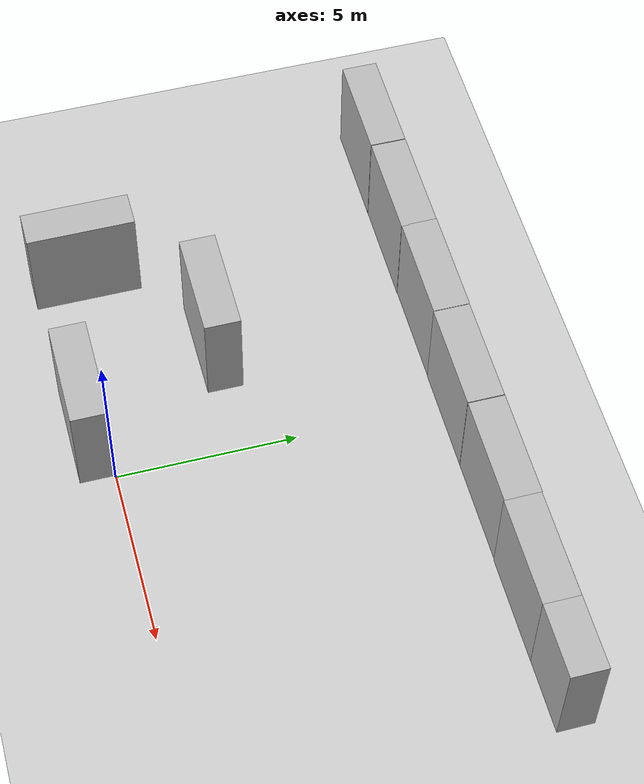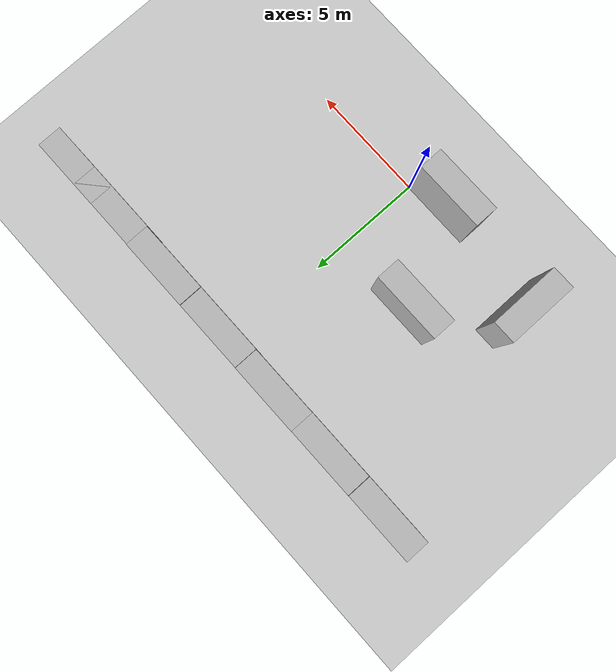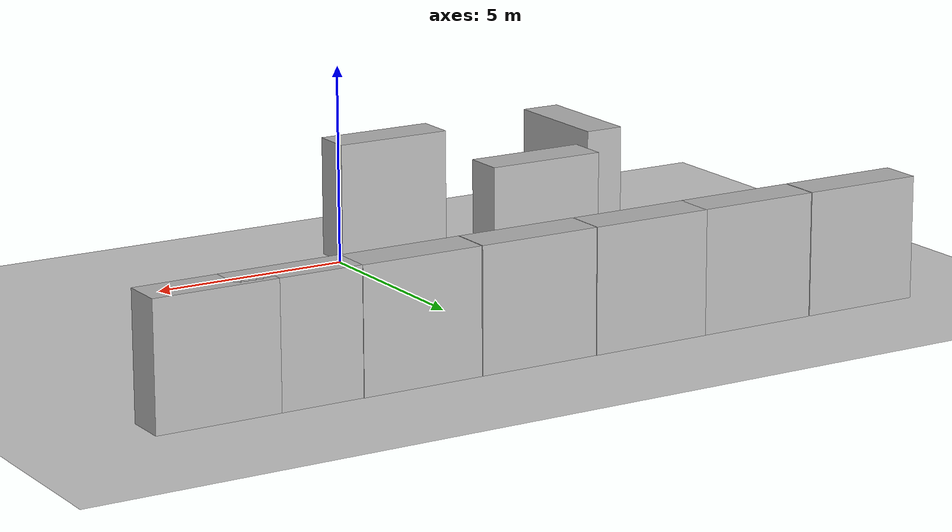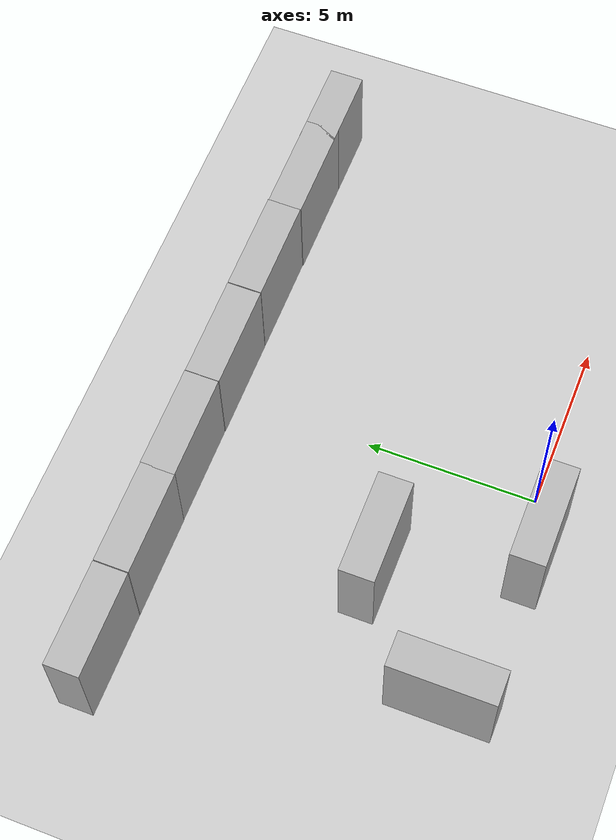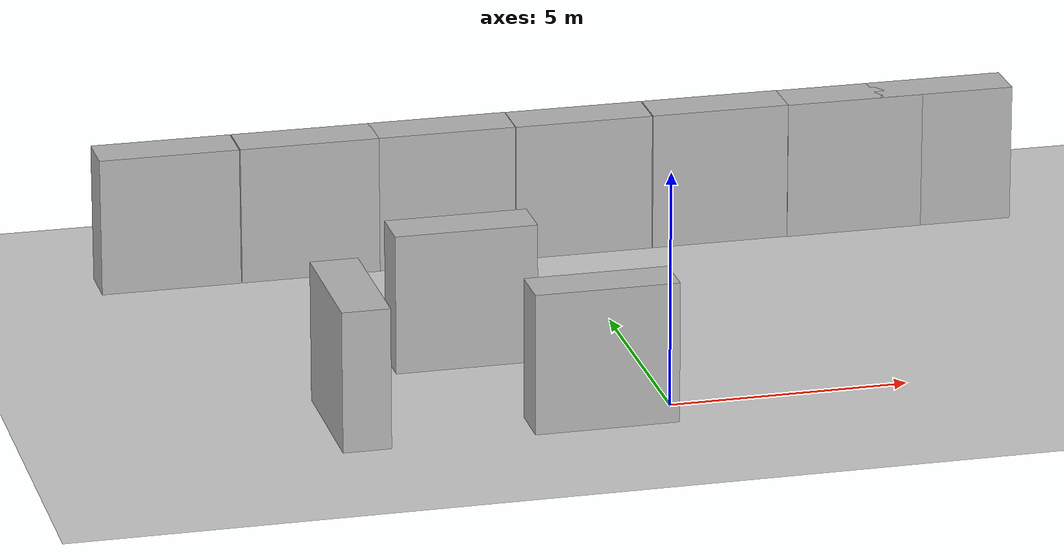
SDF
<sdf version="1.7">
 <world name="default">
  <light name="sun" type="directional">
   <pose>0 0 10 0 -0 0</pose>
   <diffuse>0.8 0.8 0.8 1</diffuse>
   <specular>0.2 0.2 0.2 1</specular>
   <attenuation>
    <range>1000</range>
    <constant>0.9</constant>
    <linear>0.01</linear>
    <quadratic>0.001</quadratic>
   </attenuation>
   <direction>-0.5 0.1 -0.9</direction>
   <spot><inner_angle>0</inner_angle><outer_angle>0</outer_angle><falloff>0</falloff></spot>
  </light>
  <model name="ground_plane">
   <static>1</static>
   <link name="link">
    <collision name="collision">
     <geometry><plane><normal>0 0 1</normal><size>100 100</size></plane></geometry>
     <surface><friction><ode><mu>100</mu><mu2>50</mu2></ode></friction></surface>
    </collision>
    <visual name="visual">
     <cast_shadows>0</cast_shadows>
     <geometry><plane><normal>0 0 1</normal><size>100 100</size></plane></geometry>
     <material>
      <script><uri>file://media/materials/scripts/gazebo.material</uri><name>Gazebo/Grey</name></script>
     </material>
    </visual>
   </link>
  </model>
  <gravity>0 0 -9.8</gravity>
  <magnetic_field>6e-06 2.3e-05 -4.2e-05</magnetic_field>
  <atmosphere type="adiabatic"/>
  <physics type="ode">
   <max_step_size>0.001</max_step_size>
   <real_time_factor>1</real_time_factor>
   <real_time_update_rate>1000</real_time_update_rate>
  </physics>
  <scene><ambient>0.4 0.4 0.4 1</ambient><background>0.7 0.7 0.7 1</background><shadows>1</shadows></scene>
  <spherical_coordinates>
   <surface_model>EARTH_WGS84</surface_model>
   <latitude_deg>0</latitude_deg>
   <longitude_deg>0</longitude_deg>
   <elevation>0</elevation>
   <heading_deg>0</heading_deg>
  </spherical_coordinates>
  <model name="brick_box_3x1x3">
   <static>1</static>
   <link name="chassis">
    <pose>0 0 1.5 0 -0 0</pose>
    <collision name="collision"><geometry><box><size>3 1 3</size></box></geometry></collision>
    <visual name="visual">
     <geometry><mesh><uri>model://brick_box_3x1x3/meshes/simple_box.dae</uri><scale>3 1 3</scale></mesh></geometry>
     <material>
      <script>
       <uri>model://brick_box_3x1x3/materials/scripts</uri>
       <uri>model://brick_box_3x1x3/materials/textures</uri>
       <name>BrickBox/Diffuse</name>
      </script>
     </material>
    </visual>
   </link>
   <pose>-1.5614 -0.470992 0 0 -0 0</pose>
  </model>
  <model name="brick_box_3x1x3_0">
   <static>1</static>
   <link name="chassis">
    <pose>0 0 1.5 0 -0 0</pose>
    <collision name="collision"><geometry><box><size>3 1 3</size></box></geometry></collision>
    <visual name="visual">
     <geometry><mesh><uri>model://brick_box_3x1x3/meshes/simple_box.dae</uri><scale>3 1 3</scale></mesh></geometry>
     <material>
      <script>
       <uri>model://brick_box_3x1x3/materials/scripts</uri>
       <uri>model://brick_box_3x1x3/materials/textures</uri>
       <name>BrickBox/Diffuse</name>
      </script>
     </material>
    </visual>
   </link>
   <pose>-3.54058 3.50809 0 0 -0 0</pose>
  </model>
  <model name="brick_box_3x1x3_1">
   <static>1</static>
   <link name="chassis">
    <pose>0 0 1.5 0 -0 0</pose>
    <collision name="collision"><geometry><box><size>3 1 3</size></box></geometry></collision>
    <visual name="visual">
     <geometry><mesh><uri>model://brick_box_3x1x3/meshes/simple_box.dae</uri><scale>3 1 3</scale></mesh></geometry>
     <material>
      <script>
       <uri>model://brick_box_3x1x3/materials/scripts</uri>
       <uri>model://brick_box_3x1x3/materials/textures</uri>
       <name>BrickBox/Diffuse</name>
      </script>
     </material>
    </visual>
   </link>
   <pose>-6.53677 0.49787 0 0 -0 1.57233</pose>
  </model>
  <model name="brick_box_3x1x3_2">
   <static>1</static>
   <link name="chassis">
    <pose>0 0 1.5 0 -0 0</pose>
    <collision name="collision"><geometry><box><size>3 1 3</size></box></geometry></collision>
    <visual name="visual">
     <geometry><mesh><uri>model://brick_box_3x1x3/meshes/simple_box.dae</uri><scale>3 1 3</scale></mesh></geometry>
     <material>
      <script>
       <uri>model://brick_box_3x1x3/materials/scripts</uri>
       <uri>model://brick_box_3x1x3/materials/textures</uri>
       <name>BrickBox/Diffuse</name>
      </script>
     </material>
    </visual>
   </link>
   <pose>-8.55764 9.50286 0 0 -0 0</pose>
  </model>
  <model name="brick_box_3x1x3_3">
   <static>1</static>
   <link name="chassis">
    <pose>0 0 1.5 0 -0 0</pose>
    <collision name="collision"><geometry><box><size>3 1 3</size></box></geometry></collision>
    <visual name="visual">
     <geometry><mesh><uri>model://brick_box_3x1x3/meshes/simple_box.dae</uri><scale>3 1 3</scale></mesh></geometry>
     <material>
      <script>
       <uri>model://brick_box_3x1x3/materials/scripts</uri>
       <uri>model://brick_box_3x1x3/materials/textures</uri>
       <name>BrickBox/Diffuse</name>
      </script>
     </material>
    </visual>
   </link>
   <pose>-5.53635 9.50461 0 0 -0 0</pose>
  </model>
  <model name="brick_box_3x1x3_4">
   <static>1</static>
   <link name="chassis">
    <pose>0 0 1.5 0 -0 0</pose>
    <collision name="collision"><geometry><box><size>3 1 3</size></box></geometry></collision>
    <visual name="visual">
     <geometry><mesh><uri>model://brick_box_3x1x3/meshes/simple_box.dae</uri><scale>3 1 3</scale></mesh></geometry>
     <material>
      <script>
       <uri>model://brick_box_3x1x3/materials/scripts</uri>
       <uri>model://brick_box_3x1x3/materials/textures</uri>
       <name>BrickBox/Diffuse</name>
      </script>
     </material>
    </visual>
   </link>
   <pose>-2.56065 9.5126 0 0 -0 0</pose>
  </model>
  <model name="brick_box_3x1x3_5">
   <static>1</static>
   <link name="chassis">
    <pose>0 0 1.5 0 -0 0</pose>
    <collision name="collision"><geometry><box><size>3 1 3</size></box></geometry></collision>
    <visual name="visual">
     <geometry><mesh><uri>model://brick_box_3x1x3/meshes/simple_box.dae</uri><scale>3 1 3</scale></mesh></geometry>
     <material>
      <script>
       <uri>model://brick_box_3x1x3/materials/scripts</uri>
       <uri>model://brick_box_3x1x3/materials/textures</uri>
       <name>BrickBox/Diffuse</name>
      </script>
     </material>
    </visual>
   </link>
   <pose>0.450342 9.5027 0 0 -0 0</pose>
  </model>
  <model name="brick_box_3x1x3_6">
   <static>1</static>
   <link name="chassis">
    <pose>0 0 1.5 0 -0 0</pose>
    <collision name="collision"><geometry><box><size>3 1 3</size></box></geometry></collision>
    <visual name="visual">
     <geometry><mesh><uri>model://brick_box_3x1x3/meshes/simple_box.dae</uri><scale>3 1 3</scale></mesh></geometry>
     <material>
      <script>
       <uri>model://brick_box_3x1x3/materials/scripts</uri>
       <uri>model://brick_box_3x1x3/materials/textures</uri>
       <name>BrickBox/Diffuse</name>
      </script>
     </material>
    </visual>
   </link>
   <pose>3.47072 9.50252 0 0 -0 0</pose>
  </model>
  <model name="brick_box_3x1x3_7">
   <static>1</static>
   <link name="chassis">
    <pose>0 0 1.5 0 -0 0</pose>
    <collision name="collision"><geometry><box><size>3 1 3</size></box></geometry></collision>
    <visual name="visual">
     <geometry><mesh><uri>model://brick_box_3x1x3/meshes/simple_box.dae</uri><scale>3 1 3</scale></mesh></geometry>
     <material>
      <script>
       <uri>model://brick_box_3x1x3/materials/scripts</uri>
       <uri>model://brick_box_3x1x3/materials/textures</uri>
       <name>BrickBox/Diffuse</name>
      </script>
     </material>
    </visual>
   </link>
   <pose>6.46601 9.48428 0 0 -0 0</pose>
  </model>
  <model name="brick_box_3x1x3_8">
   <static>1</static>
   <link name="chassis">
    <pose>0 0 1.5 0 -0 0</pose>
    <collision name="collision"><geometry><box><size>3 1 3</size></box></geometry></collision>
    <visual name="visual">
     <geometry><mesh><uri>model://brick_box_3x1x3/meshes/simple_box.dae</uri><scale>3 1 3</scale></mesh></geometry>
     <material>
      <script>
       <uri>model://brick_box_3x1x3/materials/scripts</uri>
       <uri>model://brick_box_3x1x3/materials/textures</uri>
       <name>BrickBox/Diffuse</name>
      </script>
     </material>
    </visual>
   </link>
   <pose>8.48355 9.48603 0 0 -0 0</pose>
  </model>
 </world>
</sdf>
